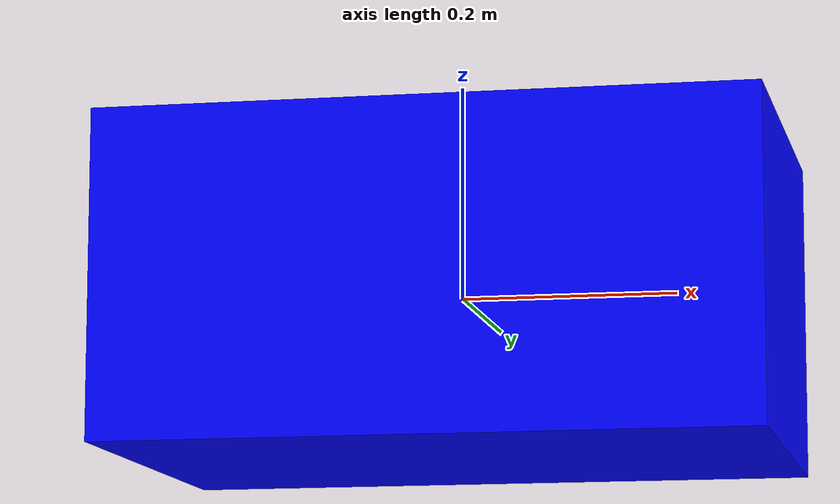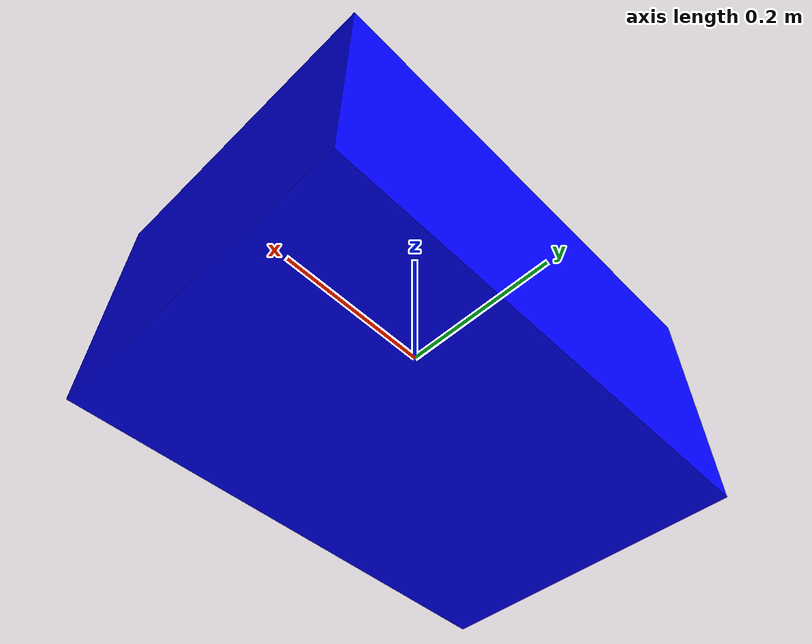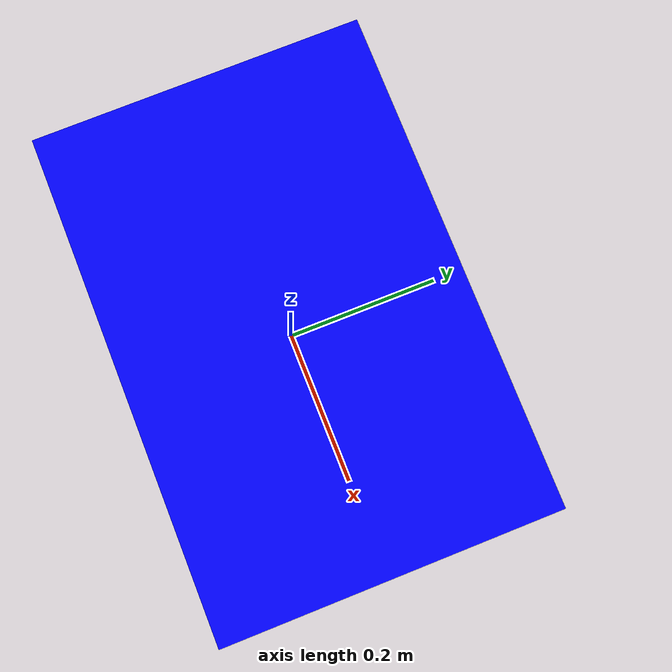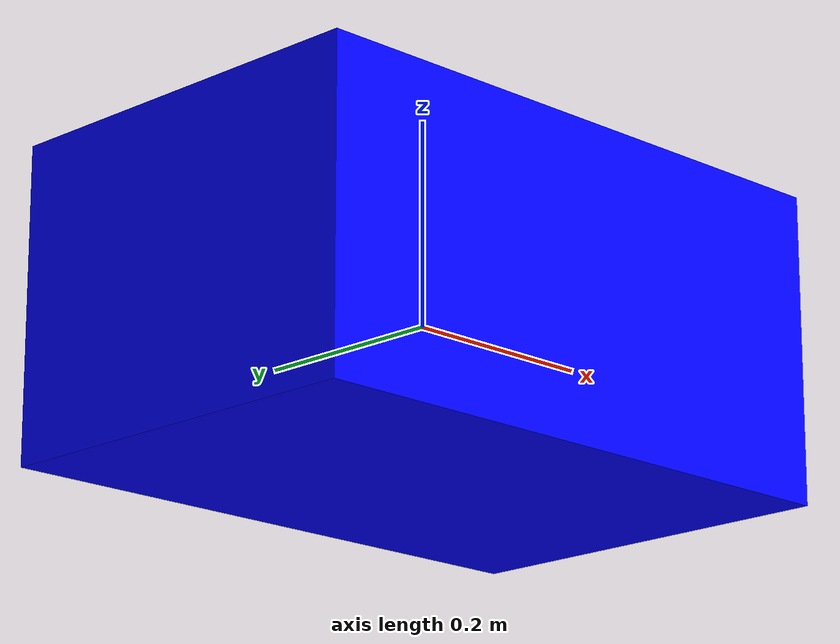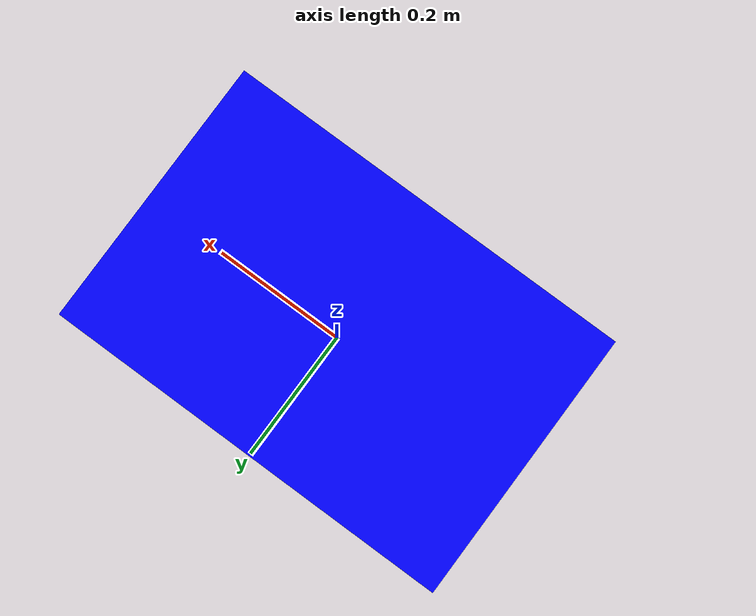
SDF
<?xml version="1.0" ?>
<sdf version="1.9">
  <model name="auv_box">
    <link name="base_link">
      <!-- 0.6 x 0.4 x 0.3 m box = 0.072 m^3.
           At 1025 kg/m^3 this gives 73.8 kg neutral buoyancy. -->
      <inertial><mass>73.8</mass><inertia><ixx>1.5375</ixx><ixy>0.0</ixy><ixz>0.0</ixz><iyy>2.7675</iyy><iyz>0.0</iyz><izz>3.198</izz></inertia></inertial>
      <visual name="base_link_visual"><geometry><box><size>0.6 0.4 0.3</size></box></geometry><material><ambient>0 0 1 1</ambient><diffuse>0 0 1 1</diffuse><specular>0.1 0.1 0.1 1</specular></material></visual>
      <collision name="base_link_collision"><geometry><box><size>0.6 0.4 0.3</size></box></geometry></collision>
    </link>
    <link name="front_left_camera_link">
      <pose relative_to="base_link">0.3 0.06 0 0 0 0</pose>
      <sensor name="front_left_camera_sensor" type="camera"><update_rate>15</update_rate><visualize>false</visualize><always_on>true</always_on><topic>/model/auv_box/stereo_front/left/image_raw</topic><camera><horizontal_fov>1.05</horizontal_fov><image><width>640</width><height>480</height></image><clip><near>0.1</near><far>30.0</far></clip></camera></sensor>
    </link>
    <joint name="front_left_camera_joint" type="fixed"><parent>base_link</parent><child>front_left_camera_link</child></joint>
    <link name="front_right_camera_link">
      <pose relative_to="base_link">0.3 -0.06 0 0 0 0</pose>
      <sensor name="front_right_camera_sensor" type="camera"><update_rate>15</update_rate><visualize>false</visualize><always_on>true</always_on><topic>/model/auv_box/stereo_front/right/image_raw</topic><camera><horizontal_fov>1.05</horizontal_fov><image><width>640</width><height>480</height></image><clip><near>0.1</near><far>30.0</far></clip></camera></sensor>
    </link>
    <joint name="front_right_camera_joint" type="fixed"><parent>base_link</parent><child>front_right_camera_link</child></joint>
    <plugin filename="gz-sim-hydrodynamics-system" name="gz::sim::systems::Hydrodynamics">
      <link_name>base_link</link_name>
      <water_density>1025.0</water_density>
      <xDotU>0</xDotU><yDotV>0</yDotV><zDotW>0</zDotW>
      <kDotP>0</kDotP><mDotQ>0</mDotQ><nDotR>0</nDotR>
      <xU>0</xU><yV>0</yV><zW>0</zW><kP>0</kP><mQ>0</mQ><nR>0</nR>
      <xUabsU>-33.732</xUabsU><yVabsV>-54.16</yVabsV><zWabsW>-73.225</zWabsW>
      <kPabsP>-3.992</kPabsP><mQabsQ>-3.992</mQabsQ><nRabsR>-3.992</nRabsR>
    </plugin>
    <plugin filename="gz-sim-velocity-control-system" name="gz::sim::systems::VelocityControl">
      <topic>/model/auv_box/cmd_vel</topic>
      <initial_linear>0 0 0</initial_linear>
      <initial_angular>0 0 0</initial_angular>
    </plugin>
    <plugin filename="gz-sim-odometry-publisher-system" name="gz::sim::systems::OdometryPublisher">
      <odom_frame>map</odom_frame><robot_base_frame>base_link</robot_base_frame>
      <dimensions>3</dimensions><odom_publish_frequency>50</odom_publish_frequency>
    </plugin>
  </model>
</sdf>
